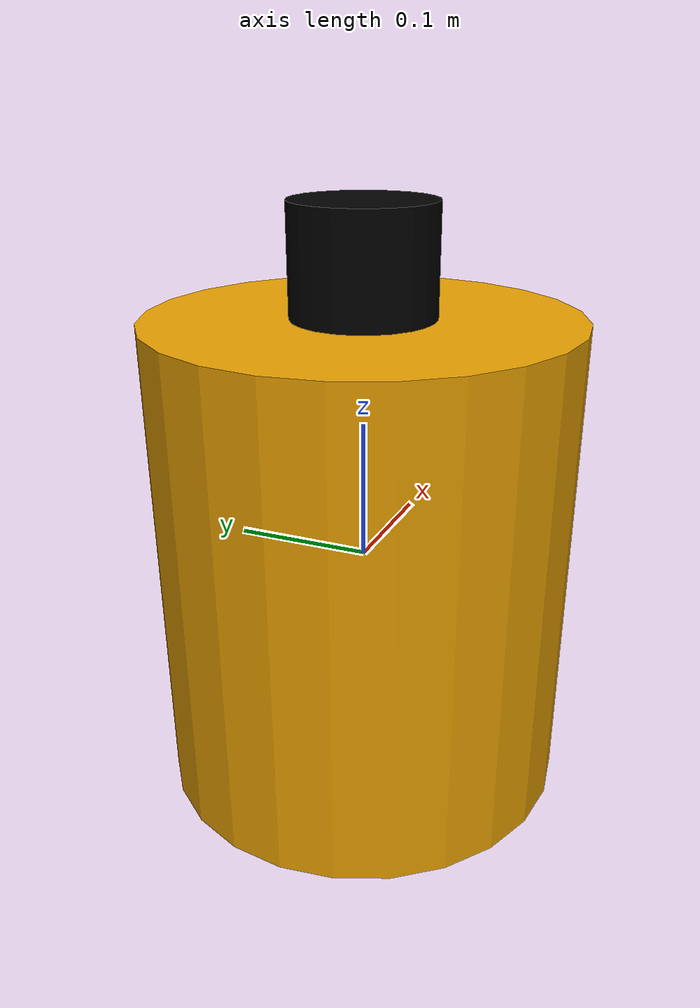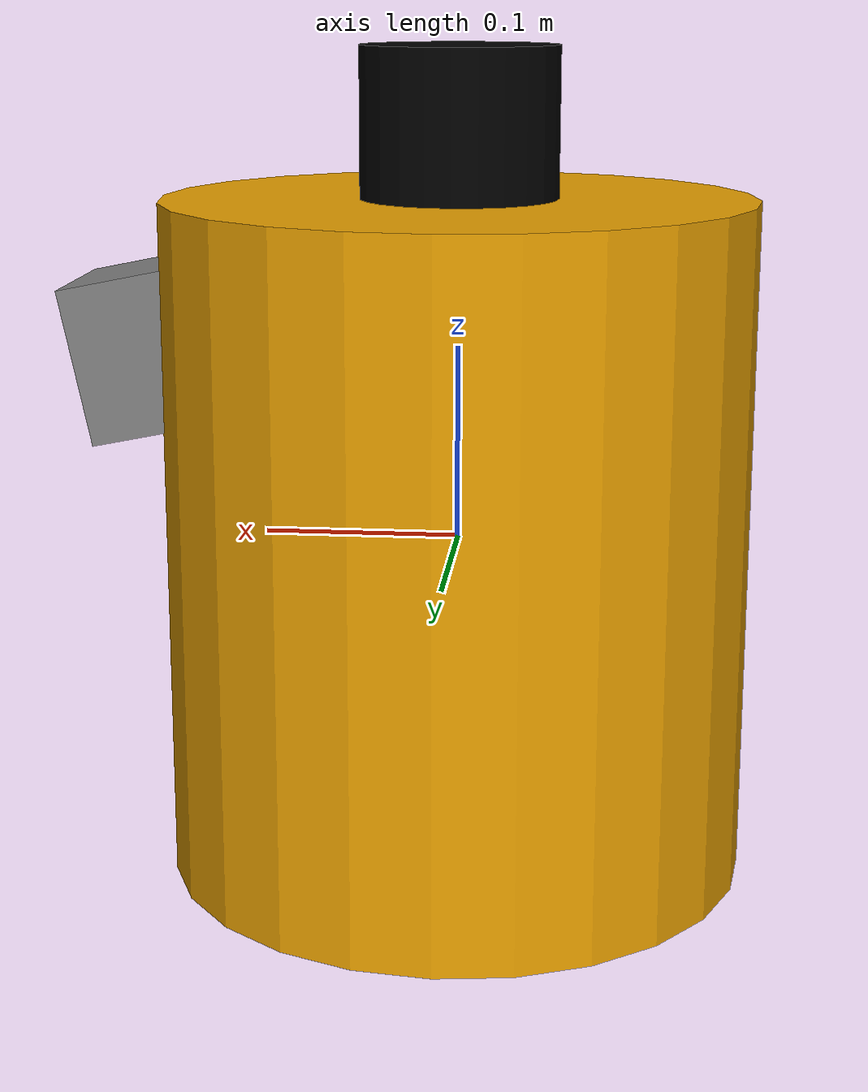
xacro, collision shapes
<?xml version="1.0"?>
<robot xmlns:xacro="http://www.ros.org/wiki/xacro" name="walle">
  <!-- Arguments -->
  <xacro:arg name="total_height" default="0.80"/>
  <xacro:arg name="body_mesh" default="package://my_azu/meshes/walle_body.dae"/>
  <xacro:arg name="body_scale" default="1.0"/>

  <!-- Constants -->
  <xacro:property name="PI" value="3.14159265359"/>
  <xacro:property name="base_mass" value="5.0"/>

  <!-- Base link -->
  <link name="base_link">
    <inertial>
      <mass value="${base_mass}"/>
      <origin xyz="0.0 0.0 0.0" rpy="0 0 0"/>
      <inertia ixx="0.1" ixy="0" ixz="0" iyy="0.1" iyz="0" izz="0.1"/>
    </inertial>
    <visual>
      <origin xyz="0.0 0.0 0.0" rpy="0 0 0"/>
      <geometry>
        <mesh filename="$(arg body_mesh)" scale="$(arg body_scale) $(arg body_scale) $(arg body_scale)"/>
      </geometry>
    </visual>
    <collision>
      <origin xyz="0.0 0.0 0.0" rpy="0 0 0"/>
      <geometry>
        <cylinder radius="0.15" length="0.35"/>
      </geometry>
    </collision>
  </link>

  <!-- LiDAR link (mounted on top) -->
  <link name="lidar_link">
    <inertial>
      <mass value="0.5"/>
      <origin xyz="0.0 0.0 0.0" rpy="0 0 0"/>
      <inertia ixx="0.01" ixy="0" ixz="0" iyy="0.01" iyz="0" izz="0.01"/>
    </inertial>
    <visual>
      <origin xyz="0.0 0.0 0.0" rpy="0 0 0"/>
      <geometry>
        <cylinder radius="0.05" length="0.10"/>
      </geometry>
      <material name="black">
        <color rgba="0.0 0.0 0.0 1.0"/>
      </material>
    </visual>
    <collision>
      <origin xyz="0.0 0.0 0.0" rpy="0 0 0"/>
      <geometry>
        <cylinder radius="0.05" length="0.10"/>
      </geometry>
    </collision>
  </link>

  <!-- Camera link -->
  <link name="camera_link">
    <inertial>
      <mass value="0.2"/>
      <origin xyz="0.0 0.0 0.0" rpy="0 0 0"/>
      <inertia ixx="0.001" ixy="0" ixz="0" iyy="0.001" iyz="0" izz="0.001"/>
    </inertial>
    <visual>
      <origin xyz="0.0 0.0 0.0" rpy="0 0 0"/>
      <geometry>
        <box size="0.08 0.08 0.08"/>
      </geometry>
      <material name="gray">
        <color rgba="0.5 0.5 0.5 1.0"/>
      </material>
    </visual>
    <collision>
      <origin xyz="0.0 0.0 0.0" rpy="0 0 0"/>
      <geometry>
        <box size="0.08 0.08 0.08"/>
      </geometry>
    </collision>
  </link>

  <!-- IMU link -->
  <link name="imu_link">
    <inertial>
      <mass value="0.1"/>
      <origin xyz="0.0 0.0 0.0" rpy="0 0 0"/>
      <inertia ixx="0.0001" ixy="0" ixz="0" iyy="0.0001" iyz="0" izz="0.0001"/>
    </inertial>
  </link>

  <!-- Joints -->
  <!-- LiDAR joint (fixed on top of base) -->
  <joint name="base_link_to_lidar" type="fixed">
    <parent link="base_link"/>
    <child link="lidar_link"/>
    <origin xyz="0.0 0.0 0.2" rpy="0 0 0"/>
  </joint>

  <!-- Camera joint (fixed in front) -->
  <joint name="base_link_to_camera" type="fixed">
    <parent link="base_link"/>
    <child link="camera_link"/>
    <origin xyz="0.15 0.0 0.1" rpy="0 0.2 0"/>
  </joint>

  <!-- IMU joint (fixed at center) -->
  <joint name="base_link_to_imu" type="fixed">
    <parent link="base_link"/>
    <child link="imu_link"/>
    <origin xyz="0.0 0.0 0.0" rpy="0 0 0"/>
  </joint>

</robot>
